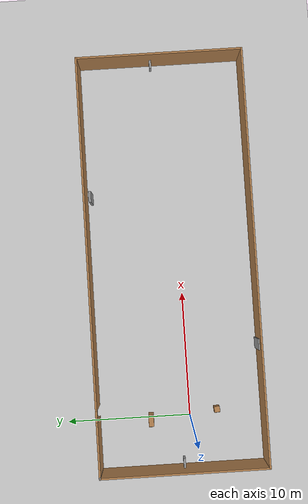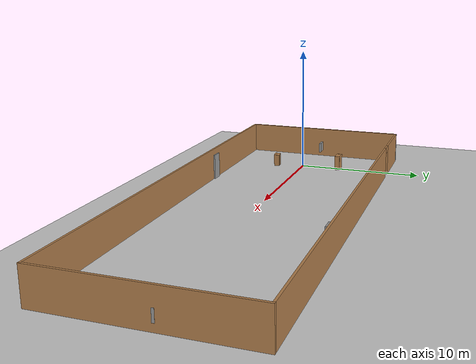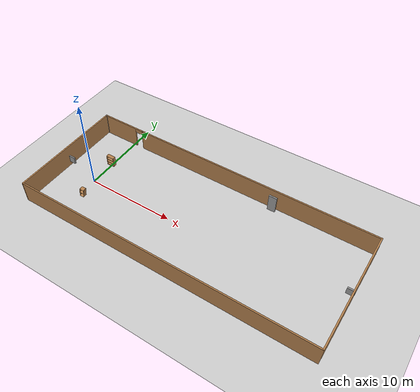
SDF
<sdf version="1.7">
 <world name="default">
  <light name="sun" type="directional">
   <pose>0 0 10 0 -0 0</pose>
   <diffuse>0.8 0.8 0.8 1</diffuse>
   <specular>0.2 0.2 0.2 1</specular>
   <attenuation>
    <range>1000</range>
    <constant>0.9</constant>
    <linear>0.01</linear>
    <quadratic>0.001</quadratic>
   </attenuation>
   <direction>-0.5 0.1 -0.9</direction>
   <spot><inner_angle>0</inner_angle><outer_angle>0</outer_angle><falloff>0</falloff></spot>
  </light>
  <model name="ground_plane">
   <static>1</static>
   <link name="link">
    <collision name="collision">
     <geometry><plane><normal>0 0 1</normal><size>100 100</size></plane></geometry>
     <surface><friction><ode><mu>100</mu><mu2>50</mu2></ode></friction></surface>
    </collision>
    <visual name="visual">
     <cast_shadows>0</cast_shadows>
     <geometry><plane><normal>0 0 1</normal><size>100 100</size></plane></geometry>
     <material>
      <script><uri>file://media/materials/scripts/gazebo.material</uri><name>Gazebo/Grey</name></script>
     </material>
    </visual>
   </link>
  </model>
  <gravity>0 0 -9.8</gravity>
  <magnetic_field>6e-06 2.3e-05 -4.2e-05</magnetic_field>
  <atmosphere type="adiabatic"/>
  <physics type="ode">
   <max_step_size>0.001</max_step_size>
   <real_time_factor>1</real_time_factor>
   <real_time_update_rate>1000</real_time_update_rate>
  </physics>
  <scene><ambient>0.4 0.4 0.4 1</ambient><background>0.7 0.7 0.7 1</background><shadows>1</shadows></scene>
  <audio><device>default</device></audio>
  <spherical_coordinates>
   <surface_model>EARTH_WGS84</surface_model>
   <latitude_deg>0</latitude_deg>
   <longitude_deg>0</longitude_deg>
   <elevation>0</elevation>
   <heading_deg>0</heading_deg>
  </spherical_coordinates>
  <model name="bookshelf">
   <static>1</static>
   <link name="link">
    <inertial><mass>1</mass></inertial>
    <collision name="back">
     <pose>0 0.005 0.6 0 -0 0</pose>
     <geometry><box><size>0.9 0.01 1.2</size></box></geometry>
    </collision>
    <visual name="visual1">
     <pose>0 0.005 0.6 0 -0 0</pose>
     <geometry><box><size>0.9 0.01 1.2</size></box></geometry>
     <material>
      <script><uri>file://media/materials/scripts/gazebo.material</uri><name>Gazebo/Wood</name></script>
     </material>
    </visual>
    <collision name="left_side">
     <pose>0.45 -0.195 0.6 0 -0 0</pose>
     <geometry><box><size>0.02 0.4 1.2</size></box></geometry>
    </collision>
    <visual name="visual2">
     <pose>0.45 -0.195 0.6 0 -0 0</pose>
     <geometry><box><size>0.02 0.4 1.2</size></box></geometry>
     <material>
      <script><uri>file://media/materials/scripts/gazebo.material</uri><name>Gazebo/Wood</name></script>
     </material>
    </visual>
    <collision name="right_side">
     <pose>-0.45 -0.195 0.6 0 -0 0</pose>
     <geometry><box><size>0.02 0.4 1.2</size></box></geometry>
    </collision>
    <visual name="visual3">
     <pose>-0.45 -0.195 0.6 0 -0 0</pose>
     <geometry><box><size>0.02 0.4 1.2</size></box></geometry>
     <material>
      <script><uri>file://media/materials/scripts/gazebo.material</uri><name>Gazebo/Wood</name></script>
     </material>
    </visual>
    <collision name="bottom">
     <pose>0 -0.195 0.03 0 -0 0</pose>
     <geometry><box><size>0.88 0.4 0.06</size></box></geometry>
    </collision>
    <visual name="visual4">
     <pose>0 -0.195 0.03 0 -0 0</pose>
     <geometry><box><size>0.88 0.4 0.06</size></box></geometry>
     <material>
      <script><uri>file://media/materials/scripts/gazebo.material</uri><name>Gazebo/Wood</name></script>
     </material>
    </visual>
    <collision name="top">
     <pose>0 -0.195 1.19 0 -0 0</pose>
     <geometry><box><size>0.88 0.4 0.02</size></box></geometry>
    </collision>
    <visual name="visual5">
     <pose>0 -0.195 1.19 0 -0 0</pose>
     <geometry><box><size>0.88 0.4 0.02</size></box></geometry>
     <material>
      <script><uri>file://media/materials/scripts/gazebo.material</uri><name>Gazebo/Wood</name></script>
     </material>
    </visual>
    <collision name="low_shelf">
     <pose>0 -0.195 0.43 0 -0 0</pose>
     <geometry><box><size>0.88 0.4 0.02</size></box></geometry>
    </collision>
    <visual name="visual6">
     <pose>0 -0.195 0.43 0 -0 0</pose>
     <geometry><box><size>0.88 0.4 0.02</size></box></geometry>
     <material>
      <script><uri>file://media/materials/scripts/gazebo.material</uri><name>Gazebo/Wood</name></script>
     </material>
    </visual>
    <collision name="high_shelf">
     <pose>0 -0.195 0.8 0 -0 0</pose>
     <geometry><box><size>0.88 0.4 0.02</size></box></geometry>
    </collision>
    <visual name="visual7">
     <pose>0 -0.195 0.8 0 -0 0</pose>
     <geometry><box><size>0.88 0.4 0.02</size></box></geometry>
     <material>
      <script><uri>file://media/materials/scripts/gazebo.material</uri><name>Gazebo/Wood</name></script>
     </material>
    </visual>
   </link>
   <pose>-0.087475 3.37922 0 0 -0 0</pose>
  </model>
  <model name="cabinet">
   <static>1</static>
   <link name="cabinet_bottom_plate">
    <inertial>
     <pose>0 0 -1 0 -0 0</pose>
     <inertia><ixx>2.05</ixx><ixy>0</ixy><ixz>0</ixz><iyy>2.05</iyy><iyz>0</iyz><izz>2.05</izz></inertia>
     <mass>25</mass>
    </inertial>
    <collision name="cabinet_bottom_plate_geom">
     <pose>0 0 0.01 0 -0 0</pose>
     <geometry><box><size>0.45 0.45 0.02</size></box></geometry>
    </collision>
    <visual name="cabinet_bottom_plate_geom_visual">
     <pose>0 0 0.01 0 -0 0</pose>
     <geometry><box><size>0.45 0.45 0.02</size></box></geometry>
     <material>
      <script><uri>file://media/materials/scripts/gazebo.material</uri><name>Gazebo/Wood</name></script>
     </material>
    </visual>
    <collision name="cabinet_bottom_plate_geom_cabinet_back_plate">
     <pose>0.235 0 0.51 0 -0 0</pose>
     <geometry><box><size>0.02 0.45 1.02</size></box></geometry>
    </collision>
    <visual name="cabinet_bottom_plate_geom_cabinet_back_plate_visual">
     <pose>0.235 0 0.51 0 -0 0</pose>
     <geometry><box><size>0.02 0.45 1.02</size></box></geometry>
     <material>
      <script><uri>file://media/materials/scripts/gazebo.material</uri><name>Gazebo/Wood</name></script>
     </material>
    </visual>
    <collision name="cabinet_bottom_plate_geom_cabinet_left_plate">
     <pose>0 0.235 0.51 0 -0 0</pose>
     <geometry><box><size>0.45 0.02 1.02</size></box></geometry>
    </collision>
    <visual name="cabinet_bottom_plate_geom_cabinet_left_plate_visual">
     <pose>0 0.235 0.51 0 -0 0</pose>
     <geometry><box><size>0.45 0.02 1.02</size></box></geometry>
     <material>
      <script><uri>file://media/materials/scripts/gazebo.material</uri><name>Gazebo/Wood</name></script>
     </material>
    </visual>
    <collision name="cabinet_bottom_plate_geom_cabinet_middle_plate">
     <pose>0 0 0.51 0 -0 0</pose>
     <geometry><box><size>0.45 0.45 0.02</size></box></geometry>
    </collision>
    <visual name="cabinet_bottom_plate_geom_cabinet_middle_plate_visual">
     <pose>0 0 0.51 0 -0 0</pose>
     <geometry><box><size>0.45 0.45 0.02</size></box></geometry>
     <material>
      <script><uri>file://media/materials/scripts/gazebo.material</uri><name>Gazebo/Wood</name></script>
     </material>
    </visual>
    <collision name="cabinet_bottom_plate_geom_cabinet_right_plate">
     <pose>0 -0.235 0.51 0 -0 0</pose>
     <geometry><box><size>0.45 0.02 1.02</size></box></geometry>
    </collision>
    <visual name="cabinet_bottom_plate_geom_cabinet_right_plate_visual">
     <pose>0 -0.235 0.51 0 -0 0</pose>
     <geometry><box><size>0.45 0.02 1.02</size></box></geometry>
     <material>
      <script><uri>file://media/materials/scripts/gazebo.material</uri><name>Gazebo/Wood</name></script>
     </material>
    </visual>
    <collision name="cabinet_bottom_plate_geom_cabinet_top_plate">
     <pose>0 0 1.01 0 -0 0</pose>
     <geometry><box><size>0.45 0.45 0.02</size></box></geometry>
    </collision>
    <visual name="cabinet_bottom_plate_geom_cabinet_top_plate_visual">
     <pose>0 0 1.01 0 -0 0</pose>
     <geometry><box><size>0.45 0.45 0.02</size></box></geometry>
     <material>
      <script><uri>file://media/materials/scripts/gazebo.material</uri><name>Gazebo/Wood</name></script>
     </material>
    </visual>
   </link>
   <pose>0.380496 -2.22683 0 0.115463 0.023801 1.6823</pose>
  </model>
  <model name="test">
   <pose>12.6871 0.76648 0 0 -0 0</pose>
   <link name="Door_1">
    <collision name="Door_1_Collision">
     <geometry><box><size>0.9 0.17 2</size></box></geometry>
     <pose>0 0 1 0 -0 0</pose>
    </collision>
    <visual name="Door_1_Visual">
     <pose>0 0 1 0 -0 0</pose>
     <geometry><box><size>0.9 0.17 2</size></box></geometry>
     <material>
      <script><uri>file://media/materials/scripts/gazebo.material</uri><name>Gazebo/Grey</name></script>
     </material>
    </visual>
    <pose>-7.09714 -6.5732 0 0 -0 0</pose>
   </link>
   <link name="Door_2">
    <collision name="Door_2_Collision">
     <geometry><box><size>0.9 0.17 2</size></box></geometry>
     <pose>0 0 1 0 -0 0</pose>
    </collision>
    <visual name="Door_2_Visual">
     <pose>0 0 1 0 -0 0</pose>
     <geometry><box><size>0.9 0.17 2</size></box></geometry>
     <material>
      <script><uri>file://media/materials/scripts/gazebo.material</uri><name>Gazebo/Grey</name></script>
     </material>
    </visual>
    <pose>5.56837 6.23383 0 0 -0 0</pose>
   </link>
   <link name="Wall_12">
    <pose>0.040674 6.67067 0 0 -0 3.14159</pose>
    <visual name="Wall_12_Visual_0">
     <pose>-2.62535 0 1.25 0 -0 0</pose>
     <geometry><box><size>28.2493 0.15 2.5</size></box></geometry>
     <material>
      <script><uri>file://media/materials/scripts/gazebo.material</uri><name>Gazebo/Wood</name></script>
      <ambient>1 1 1 1</ambient>
     </material>
     <meta><layer>0</layer></meta>
    </visual>
    <collision name="Wall_12_Collision_0">
     <geometry><box><size>28.2493 0.15 2.5</size></box></geometry>
     <pose>-2.62535 0 1.25 0 -0 0</pose>
    </collision>
    <visual name="Wall_12_Visual_1">
     <pose>14.5746 0 1.25 0 -0 0</pose>
     <geometry><box><size>4.3507 0.15 2.5</size></box></geometry>
     <material>
      <script><uri>file://media/materials/scripts/gazebo.material</uri><name>Gazebo/Wood</name></script>
      <ambient>1 1 1 1</ambient>
     </material>
     <meta><layer>0</layer></meta>
    </visual>
    <collision name="Wall_12_Collision_1">
     <geometry><box><size>4.3507 0.15 2.5</size></box></geometry>
     <pose>14.5746 0 1.25 0 -0 0</pose>
    </collision>
    <visual name="Wall_12_Visual_2">
     <pose>11.9493 0 2.25 0 -0 0</pose>
     <geometry><box><size>0.9 0.15 0.5</size></box></geometry>
     <material>
      <script><uri>file://media/materials/scripts/gazebo.material</uri><name>Gazebo/Wood</name></script>
      <ambient>1 1 1 1</ambient>
     </material>
     <meta><layer>0</layer></meta>
    </visual>
    <collision name="Wall_12_Collision_2">
     <geometry><box><size>0.9 0.15 0.5</size></box></geometry>
     <pose>11.9493 0 2.25 0 -0 0</pose>
    </collision>
   </link>
   <link name="Wall_13">
    <collision name="Wall_13_Collision">
     <geometry><box><size>0.227274 0.15 2.5</size></box></geometry>
     <pose>0 0 1.25 0 -0 0</pose>
    </collision>
    <visual name="Wall_13_Visual">
     <pose>0 0 1.25 0 -0 0</pose>
     <geometry><box><size>0.227274 0.15 2.5</size></box></geometry>
     <material>
      <script><uri>file://media/materials/scripts/gazebo.material</uri><name>Gazebo/Grey</name></script>
      <ambient>1 1 1 1</ambient>
     </material>
     <meta><layer>0</layer></meta>
    </visual>
    <pose>-16.6729 6.6729 0 0 -0 3.08384</pose>
   </link>
   <link name="Wall_18">
    <collision name="Wall_18_Collision">
     <geometry><box><size>13.5 0.15 2.5</size></box></geometry>
     <pose>0 0 1.25 0 -0 0</pose>
    </collision>
    <visual name="Wall_18_Visual">
     <pose>0 0 1.25 0 -0 0</pose>
     <geometry><box><size>13.5 0.15 2.5</size></box></geometry>
     <material>
      <script><uri>file://media/materials/scripts/gazebo.material</uri><name>Gazebo/Wood</name></script>
      <ambient>1 1 1 1</ambient>
     </material>
     <meta><layer>0</layer></meta>
    </visual>
    <pose>16.7157 -0.004332 0 0 -0 -1.5708</pose>
   </link>
   <link name="Wall_19">
    <collision name="Wall_19_Collision">
     <geometry><box><size>33.5 0.15 2.5</size></box></geometry>
     <pose>0 0 1.25 0 -0 0</pose>
    </collision>
    <visual name="Wall_19_Visual">
     <pose>0 0 1.25 0 -0 0</pose>
     <geometry><box><size>33.5 0.15 2.5</size></box></geometry>
     <material>
      <script><uri>file://media/materials/scripts/gazebo.material</uri><name>Gazebo/Wood</name></script>
      <ambient>1 1 1 1</ambient>
     </material>
     <meta><layer>0</layer></meta>
    </visual>
    <pose>0.040674 -6.67933 0 0 -0 3.14159</pose>
   </link>
   <link name="Wall_9">
    <collision name="Wall_9_Collision">
     <geometry><box><size>13.5 0.15 2.5</size></box></geometry>
     <pose>0 0 1.25 0 -0 0</pose>
    </collision>
    <visual name="Wall_9_Visual">
     <pose>0 0 1.25 0 -0 0</pose>
     <geometry><box><size>13.5 0.15 2.5</size></box></geometry>
     <material>
      <script><uri>file://media/materials/scripts/gazebo.material</uri><name>Gazebo/Wood</name></script>
      <ambient>1 1 1 1</ambient>
     </material>
     <meta><layer>0</layer></meta>
    </visual>
    <pose>-16.7115 0.000129 0 0 -0 -1.5708</pose>
   </link>
   <link name="Window_0">
    <collision name="Window_0_Collision">
     <geometry><box><size>0.8 0.17 0.8</size></box></geometry>
     <pose>0 0 0.4 0 -0 0</pose>
    </collision>
    <visual name="Window_0_Visual">
     <pose>0 0 0.4 0 -0 0</pose>
     <geometry><box><size>0.8 0.17 0.8</size></box></geometry>
     <material>
      <script><uri>file://media/materials/scripts/gazebo.material</uri><name>Gazebo/Grey</name></script>
     </material>
    </visual>
    <pose>16.3942 0.714778 0.5 0 -0 0</pose>
   </link>
   <link name="Window_1">
    <collision name="Window_1_Collision">
     <geometry><box><size>0.8 0.17 0.8</size></box></geometry>
     <pose>0 0 0.4 0 -0 0</pose>
    </collision>
    <visual name="Window_1_Visual">
     <pose>0 0 0.4 0 -0 0</pose>
     <geometry><box><size>0.8 0.17 0.8</size></box></geometry>
     <material>
      <script><uri>file://media/materials/scripts/gazebo.material</uri><name>Gazebo/Grey</name></script>
     </material>
    </visual>
    <pose>-16.2956 -0.06355 0.5 0 -0 0</pose>
   </link>
   <static>1</static>
  </model>
 </world>
</sdf>
